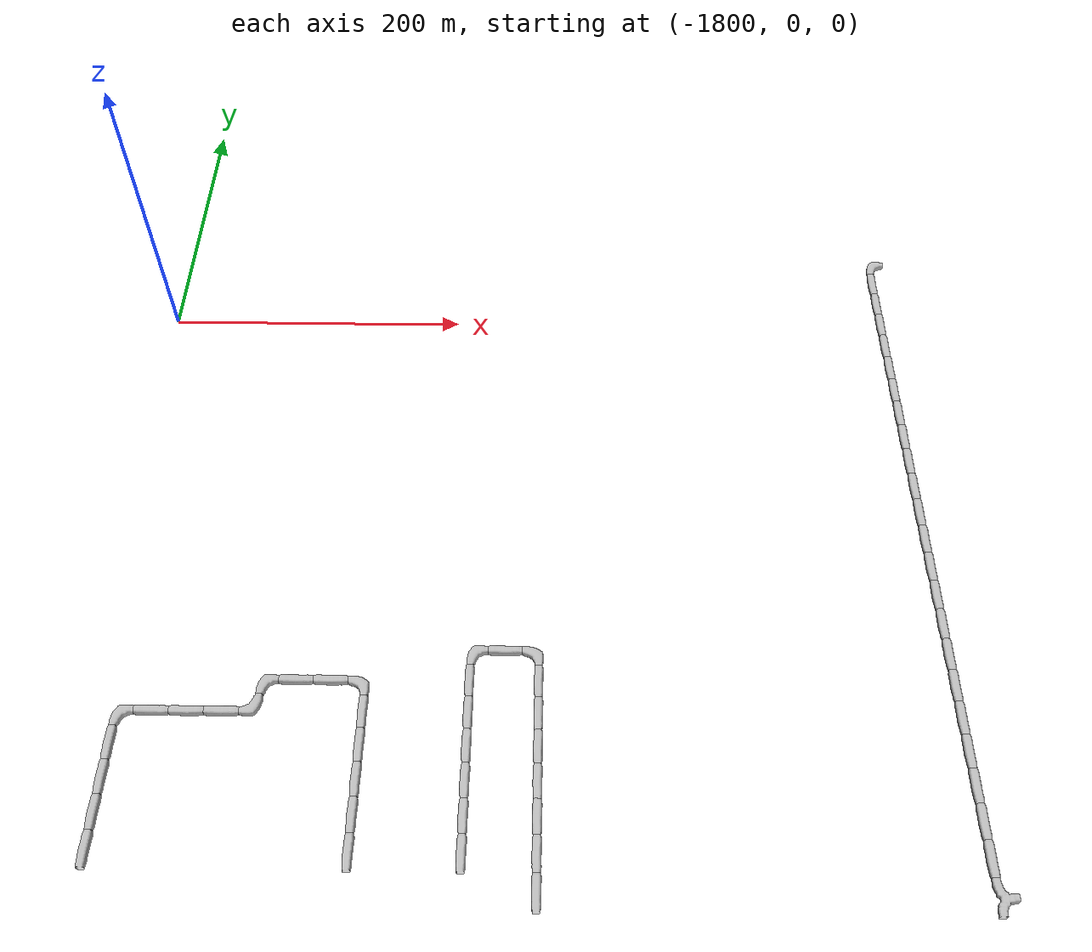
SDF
<sdf version="1.6">
 <world name="cave_32000_16">
  <include>
   <static>true</static>
   <name>cave_-65_3</name>
   <pose>-1300 60 0 0 0 -1.5707963267948966</pose>
   <uri>model://cave_L_20m</uri>
  </include>
  <include>
   <static>true</static>
   <name>cave_-65_2</name>
   <pose>-1300 40 0 0 0 0.0</pose>
   <uri>model://cave_straight_20m</uri>
  </include>
  <include>
   <static>true</static>
   <name>cave_-65_1</name>
   <pose>-1300 20 0 0 0 0.0</pose>
   <uri>model://cave_straight_20m</uri>
  </include>
  <include>
   <static>true</static>
   <name>cave_-65_0</name>
   <pose>-1300 0 0 0 0 0.0</pose>
   <uri>model://cave_straight_20m</uri>
  </include>
  <include>
   <static>true</static>
   <name>cave_-65_-1</name>
   <pose>-1300 -20 0 0 0 0.0</pose>
   <uri>model://cave_straight_20m</uri>
  </include>
  <include>
   <static>true</static>
   <name>cave_-65_-2</name>
   <pose>-1300 -40 0 0 0 0.0</pose>
   <uri>model://cave_straight_20m</uri>
  </include>
  <include>
   <static>true</static>
   <name>cave_-65_-3</name>
   <pose>-1300 -60 0 0 0 0.0</pose>
   <uri>model://cave_straight_20m</uri>
  </include>
  <include>
   <static>true</static>
   <name>cave_-65_-4</name>
   <pose>-1300 -80 0 0 0 0.0</pose>
   <uri>model://cave_straight_20m</uri>
  </include>
  <include>
   <static>true</static>
   <name>cave_-65_-5</name>
   <pose>-1300 -100 0 0 0 0.0</pose>
   <uri>model://cave_straight_20m</uri>
  </include>
  <include>
   <static>true</static>
   <name>cave_-65_-6</name>
   <pose>-1300 -120 0 0 0 0.0</pose>
   <uri>model://cave_straight_20m</uri>
  </include>
  <include>
   <static>true</static>
   <name>cave_-65_-7</name>
   <pose>-1300 -140 0 0 0 0.0</pose>
   <uri>model://cave_straight_20m</uri>
  </include>
  <include>
   <static>true</static>
   <name>cave_-65_-8</name>
   <pose>-1300 -160 0 0 0 0.0</pose>
   <uri>model://cave_straight_20m</uri>
  </include>
  <include>
   <static>true</static>
   <name>cave_-65_-9</name>
   <pose>-1300 -180 0 0 0 0.0</pose>
   <uri>model://cave_straight_20m</uri>
  </include>
  <include>
   <static>true</static>
   <name>cave_-65_-10</name>
   <pose>-1300 -200 0 0 0 0.0</pose>
   <uri>model://cave_straight_20m</uri>
  </include>
  <include>
   <static>true</static>
   <name>cave_-65_-11</name>
   <pose>-1300 -220 0 0 0 0.0</pose>
   <uri>model://cave_straight_20m</uri>
  </include>
  <include>
   <static>true</static>
   <name>cave_-65_-12</name>
   <pose>-1300 -240 0 0 0 0.0</pose>
   <uri>model://cave_straight_20m</uri>
  </include>
  <include>
   <static>true</static>
   <name>cave_-65_-13</name>
   <pose>-1300 -260 0 0 0 0.0</pose>
   <uri>model://cave_straight_20m</uri>
  </include>
  <include>
   <static>true</static>
   <name>cave_-65_-14</name>
   <pose>-1300 -280 0 0 0 0.0</pose>
   <uri>model://cave_straight_20m</uri>
  </include>
  <include>
   <static>true</static>
   <name>cave_-65_-15</name>
   <pose>-1300 -300 0 0 0 0.0</pose>
   <uri>model://cave_straight_20m</uri>
  </include>
  <include>
   <static>true</static>
   <name>cave_-65_-16</name>
   <pose>-1300 -320 0 0 0 0.0</pose>
   <uri>model://cave_straight_20m</uri>
  </include>
  <include>
   <static>true</static>
   <name>cave_-65_-17</name>
   <pose>-1300 -340 0 0 0 0.0</pose>
   <uri>model://cave_straight_20m</uri>
  </include>
  <include>
   <static>true</static>
   <name>cave_-65_-18</name>
   <pose>-1300 -360 0 0 0 0.0</pose>
   <uri>model://cave_straight_20m</uri>
  </include>
  <include>
   <static>true</static>
   <name>cave_-65_-19</name>
   <pose>-1300 -380 0 0 0 0.0</pose>
   <uri>model://cave_straight_20m</uri>
  </include>
  <include>
   <static>true</static>
   <name>cave_-65_-20</name>
   <pose>-1300 -400 0 0 0 -1.5707963267948966</pose>
   <uri>model://cave_3way_20m</uri>
  </include>
  <include>
   <static>true</static>
   <name>cave_-89_-19</name>
   <pose>-1780 -380 0 0 0 0.0</pose>
   <uri>model://cave_straight_20m</uri>
  </include>
  <include>
   <static>true</static>
   <name>cave_-89_-18</name>
   <pose>-1780 -360 0 0 0 0.0</pose>
   <uri>model://cave_straight_20m</uri>
  </include>
  <include>
   <static>true</static>
   <name>cave_-89_-17</name>
   <pose>-1780 -340 0 0 0 0.0</pose>
   <uri>model://cave_straight_20m</uri>
  </include>
  <include>
   <static>true</static>
   <name>cave_-89_-16</name>
   <pose>-1780 -320 0 0 0 0.0</pose>
   <uri>model://cave_straight_20m</uri>
  </include>
  <include>
   <static>true</static>
   <name>cave_-89_-15</name>
   <pose>-1780 -300 0 0 0 -1.5707963267948966</pose>
   <uri>model://cave_L_20m</uri>
  </include>
  <include>
   <static>true</static>
   <name>cave_-88_-15</name>
   <pose>-1760 -300 0 0 0 1.5707963267948966</pose>
   <uri>model://cave_straight_20m</uri>
  </include>
  <include>
   <static>true</static>
   <name>cave_-87_-15</name>
   <pose>-1740 -300 0 0 0 1.5707963267948966</pose>
   <uri>model://cave_straight_20m</uri>
  </include>
  <include>
   <static>true</static>
   <name>cave_-86_-15</name>
   <pose>-1720 -300 0 0 0 1.5707963267948966</pose>
   <uri>model://cave_straight_20m</uri>
  </include>
  <include>
   <static>true</static>
   <name>cave_-85_-15</name>
   <pose>-1700 -300 0 0 0 1.5707963267948966</pose>
   <uri>model://cave_L_20m</uri>
  </include>
  <include>
   <static>true</static>
   <name>cave_-85_-14</name>
   <pose>-1700 -280 0 0 0 -1.5707963267948966</pose>
   <uri>model://cave_L_20m</uri>
  </include>
  <include>
   <static>true</static>
   <name>cave_-84_-14</name>
   <pose>-1680 -280 0 0 0 1.5707963267948966</pose>
   <uri>model://cave_straight_20m</uri>
  </include>
  <include>
   <static>true</static>
   <name>cave_-83_-14</name>
   <pose>-1660 -280 0 0 0 1.5707963267948966</pose>
   <uri>model://cave_straight_20m</uri>
  </include>
  <include>
   <static>true</static>
   <name>cave_-82_-14</name>
   <pose>-1640 -280 0 0 0 3.141592653589793</pose>
   <uri>model://cave_L_20m</uri>
  </include>
  <include>
   <static>true</static>
   <name>cave_-82_-15</name>
   <pose>-1640 -300 0 0 0 0.0</pose>
   <uri>model://cave_straight_20m</uri>
  </include>
  <include>
   <static>true</static>
   <name>cave_-82_-16</name>
   <pose>-1640 -320 0 0 0 0.0</pose>
   <uri>model://cave_straight_20m</uri>
  </include>
  <include>
   <static>true</static>
   <name>cave_-82_-17</name>
   <pose>-1640 -340 0 0 0 0.0</pose>
   <uri>model://cave_straight_20m</uri>
  </include>
  <include>
   <static>true</static>
   <name>cave_-82_-18</name>
   <pose>-1640 -360 0 0 0 0.0</pose>
   <uri>model://cave_straight_20m</uri>
  </include>
  <include>
   <static>true</static>
   <name>cave_-82_-19</name>
   <pose>-1640 -380 0 0 0 0.0</pose>
   <uri>model://cave_straight_20m</uri>
  </include>
  <include>
   <static>true</static>
   <name>cave_-79_-19</name>
   <pose>-1580 -380 0 0 0 0.0</pose>
   <uri>model://cave_straight_20m</uri>
  </include>
  <include>
   <static>true</static>
   <name>cave_-79_-18</name>
   <pose>-1580 -360 0 0 0 0.0</pose>
   <uri>model://cave_straight_20m</uri>
  </include>
  <include>
   <static>true</static>
   <name>cave_-79_-17</name>
   <pose>-1580 -340 0 0 0 0.0</pose>
   <uri>model://cave_straight_20m</uri>
  </include>
  <include>
   <static>true</static>
   <name>cave_-79_-16</name>
   <pose>-1580 -320 0 0 0 0.0</pose>
   <uri>model://cave_straight_20m</uri>
  </include>
  <include>
   <static>true</static>
   <name>cave_-79_-15</name>
   <pose>-1580 -300 0 0 0 0.0</pose>
   <uri>model://cave_straight_20m</uri>
  </include>
  <include>
   <static>true</static>
   <name>cave_-79_-14</name>
   <pose>-1580 -280 0 0 0 0.0</pose>
   <uri>model://cave_straight_20m</uri>
  </include>
  <include>
   <static>true</static>
   <name>cave_-79_-13</name>
   <pose>-1580 -260 0 0 0 -1.5707963267948966</pose>
   <uri>model://cave_L_20m</uri>
  </include>
  <include>
   <static>true</static>
   <name>cave_-78_-13</name>
   <pose>-1560 -260 0 0 0 1.5707963267948966</pose>
   <uri>model://cave_straight_20m</uri>
  </include>
  <include>
   <static>true</static>
   <name>cave_-77_-13</name>
   <pose>-1540 -260 0 0 0 3.141592653589793</pose>
   <uri>model://cave_L_20m</uri>
  </include>
  <include>
   <static>true</static>
   <name>cave_-77_-14</name>
   <pose>-1540 -280 0 0 0 0.0</pose>
   <uri>model://cave_straight_20m</uri>
  </include>
  <include>
   <static>true</static>
   <name>cave_-77_-15</name>
   <pose>-1540 -300 0 0 0 0.0</pose>
   <uri>model://cave_straight_20m</uri>
  </include>
  <include>
   <static>true</static>
   <name>cave_-77_-16</name>
   <pose>-1540 -320 0 0 0 0.0</pose>
   <uri>model://cave_straight_20m</uri>
  </include>
  <include>
   <static>true</static>
   <name>cave_-77_-17</name>
   <pose>-1540 -340 0 0 0 0.0</pose>
   <uri>model://cave_straight_20m</uri>
  </include>
  <include>
   <static>true</static>
   <name>cave_-77_-18</name>
   <pose>-1540 -360 0 0 0 0.0</pose>
   <uri>model://cave_straight_20m</uri>
  </include>
  <include>
   <static>true</static>
   <name>cave_-77_-19</name>
   <pose>-1540 -380 0 0 0 0.0</pose>
   <uri>model://cave_straight_20m</uri>
  </include>
  <include>
   <static>true</static>
   <name>cave_-77_-20</name>
   <pose>-1540 -400 0 0 0 0.0</pose>
   <uri>model://cave_straight_20m</uri>
  </include>
 </world>
</sdf>
